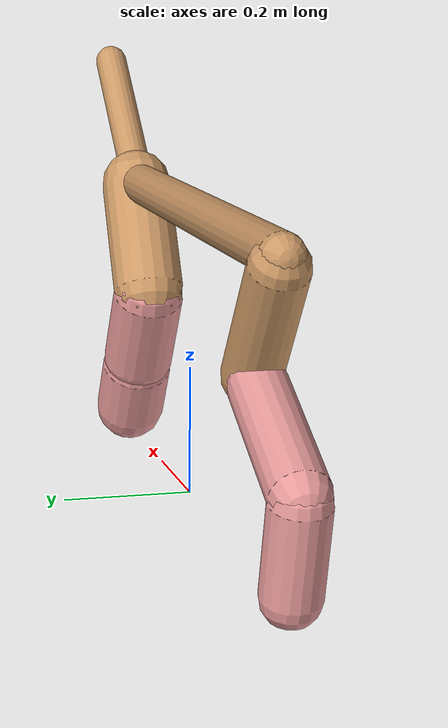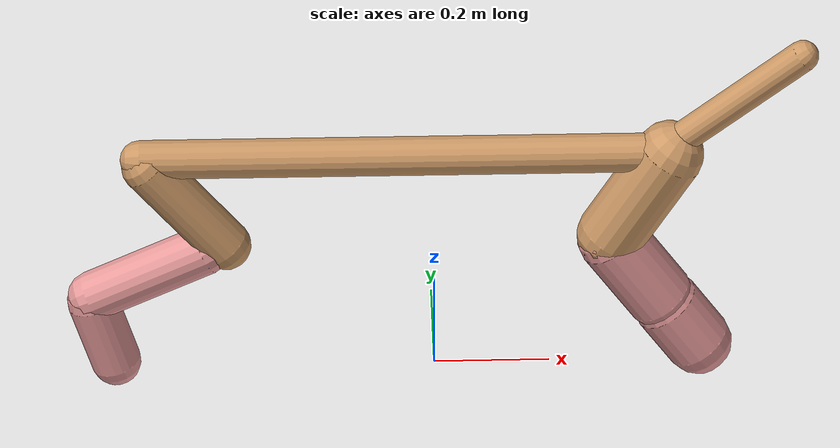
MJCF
<mujoco model="cheetah">
  <compiler angle="radian" coordinate="local" inertiafromgeom="true" settotalmass="14" />
  <default>
    <joint armature=".1" damping=".01" limited="true" solimplimit="0 .8 .03" solreflimit=".02 1" stiffness="8" />
    <geom conaffinity="0" condim="3" contype="1" friction="0.8 .1 .1" rgba="0.8 0.6 .4 1" solimp="0.0 0.8 0.01" solref="0.02 1" />
    <motor ctrllimited="true" ctrlrange="-1 1" />
  </default>
  <size nstack="300000" nuser_geom="1" />
  <option gravity="0 0 -9.81" timestep="0.01" />
  <worldbody>
    <body name="torso" pos="0.0 0.0 0.4476367670238279">
      <joint armature="0" axis="1 0 0" damping="0" limited="false" name="ignorex" pos="0 0 0" stiffness="0" type="slide" />
      <joint armature="0" axis="0 0 1" damping="0" limited="false" name="ignorez" pos="0 0 0" stiffness="0" type="slide" />
      <joint armature="0" axis="0 1 0" damping="0" limited="false" name="ignorey" pos="0 0 0" stiffness="0" type="hinge" />
      <geom fromto="-0.5 0.0 0.0 0.40364148759483204 0.0 0.0" name="torso" size="0.03334654015424668" type="capsule" />
      <geom axisangle="0 1 0 .87" name="head" pos="0.503641487594832 0.0 0.1" size="0.027182379262472942 0.15" type="capsule" />

      <body name="bthigh" pos="-.5 0 0">
        <joint axis="0 1 0" damping="6" name="bthigh" pos="0 0 0" range="-.52 1.05" stiffness="240" type="hinge" />
        <geom axisangle="0 1 0 -3.8" name="bthigh" pos="0.07690185881285683 0.0 -0.09997241645671387" size="0.04341604352637202 0.10711623171132222" type="capsule" />
        <body name="bshin" pos="0.11380371762571365 0.0 -0.18994483291342773">
          <joint axis="0 1 0" damping="4.5" name="bshin" pos="0 0 0" range="-.785 .785" stiffness="180" type="hinge" />
          <geom axisangle="0 1 0 -2.03" name="bshin" pos="-0.10494730435696509 0.0 -0.052473652178482544" rgba="0.9 0.6 0.6 1" size="0.04341604352637202 0.11080989487378161" type="capsule" />
          <body name="bfoot" pos="-0.20989460871393018 0.0 -0.10494730435696509">
            <joint axis="0 1 0" damping="3" name="bfoot" pos="0 0 0" range="-.4 .785" stiffness="120" type="hinge" />
            <geom axisangle="0 1 0 -.27" name="bfoot" pos="0.022743519911496916 0.0 -0.07353738104717336" rgba="0.9 0.6 0.6 1" size="0.04341604352637202 0.06944086745423647" type="capsule" />
            <inertial mass="10" />
          </body>
        </body>
      </body>
      <body name="fthigh" pos="0.403641487594832 0.0 0.0">
        <joint axis="0 1 0" damping="4.5" name="fthigh" pos="0 0 0" range="-1.5 0.8" stiffness="180" type="hinge" />
        <geom axisangle="0 1 0 .52" name="fthigh" pos="-0.052309536303798185 0.0 -0.08967349080651117" size="0.05879346726658999 0.09789088913616018" type="capsule" />
        <body name="fshin" pos="-0.10461907260759637 0.0 -0.17934698161302234">
          <joint axis="0 1 0" damping="3" name="fshin" pos="0 0 0" range="-1.2 1.1" stiffness="120" type="hinge" />
          <geom axisangle="0 1 0 -.6" name="fshin" pos="0.04861698050335961 0.0 -0.06731581915849791" rgba="0.9 0.6 0.6 1" size="0.05879346726658999 0.07801830261979682" type="capsule" />
          <body name="ffoot" pos="0.09723396100671922 0.0 -0.13463163831699582">
            <joint axis="0 1 0" damping="1.5" name="ffoot" pos="0 0 0" range="-3.1 -0.3" stiffness="60" type="hinge" />
            <geom axisangle="0 1 0 -.6" name="ffoot" pos="0.03500762198742704 0.0 -0.054456300869330954" rgba="0.9 0.6 0.6 1" size="0.05879346726658999 0.05152152059797904" type="capsule" />
            <inertial mass="10" />
          </body>
        </body>
      </body>
    </body>
  </worldbody>
  <actuator>
    <motor gear="120" joint="bthigh" name="bthigh" />
    <motor gear="90" joint="bshin" name="bshin" />
    <motor gear="60" joint="bfoot" name="bfoot" />
    <motor gear="120" joint="fthigh" name="fthigh" />
    <motor gear="60" joint="fshin" name="fshin" />
    <motor gear="30" joint="ffoot" name="ffoot" />
  </actuator>
</mujoco>
